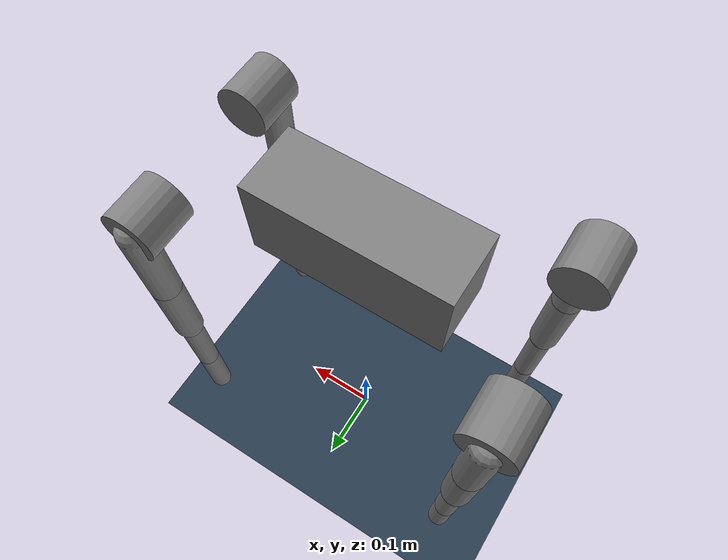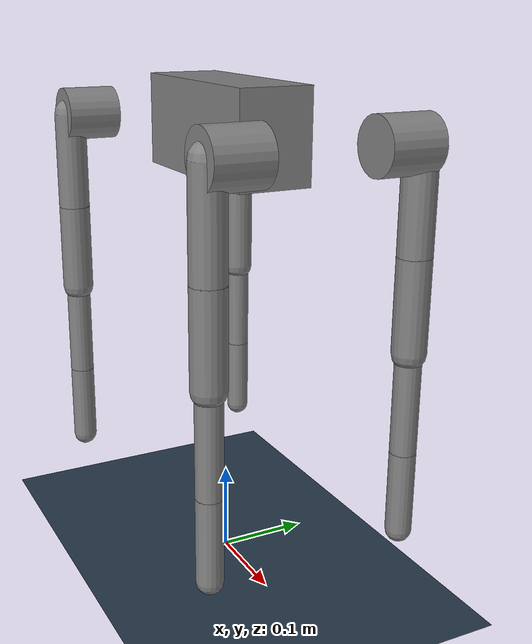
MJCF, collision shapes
<mujoco model="mini_cheetah">

    <compiler angle="radian"
              meshdir="../meshes/"
              autolimits="true"/>

    <option gravity="0 0 -9.81"
            timestep="0.001"
            iterations="80"
            solver="Newton"
            cone="elliptic"
            impratio="100"/>

    <default>
        <default class="mini">
            <joint damping="3"
                   armature="0.01"
                   frictionloss="0.1"/>

            <position kp="500"
                      forcerange="-40 40"/>

            <default class="visual">
                <geom type="mesh"
                      contype="0"
                      conaffinity="0"
                      group="2"
                      rgba="0.7 0.7 0.7 1"/>
            </default>

            <default class="collision">

                <geom type="capsule"
                      group="3"
                      contype="1"
                      conaffinity="1"
                      friction="0.8 0.02 0.01"
                      margin="0.002"/>

                <default class="hip_collision">
                    <geom type="cylinder"
                          size="0.03 0.03"
                          quat="1 1 0 0"/>
                </default>

                <default class="thigh1">
                    <geom size="0.018"
                          fromto="0 0 0 0 0 -0.11"/>
                </default>

                <default class="thigh2">
                    <geom size="0.018"
                          fromto="0 0 -0.11 0 0 -0.21"/>
                </default>

                <default class="calf1">
                    <geom size="0.014"
                          fromto="0 0 0 0 0 -0.11"/>
                </default>

                <default class="calf2">
                    <geom size="0.014"
                          fromto="0 0 -0.11 0 0 -0.20"/>
                </default>

                <default class="foot">
                    <geom type="sphere"
                          size="0.005"
                          pos="0 0 -0.20"
                          condim="6"
                          priority="1"
                          friction="1.0 0.02 0.01"
                          solimp="0.015 0.95 0.001"
                          solref="0.002 1"/>
                </default>

            </default>

            <default class="abduction">
                <joint axis="1 0 0"
                       damping="4"
                       range="-0.8 0.8"/>

                <position ctrlrange="-0.8 0.8"/>
            </default>

            <default class="hip">
                <joint axis="0 -1 0"
                       damping="4"
                       range="-1.2 4.2"/>

                <position ctrlrange="-1.2 4.2"/>
            </default>

            <default class="knee">
                <joint axis="0 -1 0"
                       damping="5"
                       armature="0.01"
                       range="-2.7 -0.8"/>

                <position ctrlrange="-2.7 -0.8"/>
            </default>

        </default>

    </default>

    <asset>

        <mesh name="mini_body" file="mini_body.stl"/>
        <mesh name="mini_abad" file="mini_abad.stl"/>
        <mesh name="mini_upper_link" file="mini_upper_link.stl"/>
        <mesh name="mini_lower_link" file="mini_lower_link.stl"/>

        <texture type="skybox"
                 builtin="gradient"
                 rgb1="0.3 0.5 0.7"
                 rgb2="0 0 0"
                 width="512"
                 height="512"/>

        <texture name="plane"
                 type="2d"
                 builtin="checker"
                 rgb1=".2 .3 .4"
                 rgb2=".1 .15 .2"
                 width="512"
                 height="512"/>

        <material name="plane"
                  texture="plane"
                  texrepeat="3 3"
                  reflectance="0"/>

    </asset>

    <worldbody>

        <light directional="true"
               diffuse=".8 .8 .8"
               pos="0 0 10"
               dir="0 0 -1"/>

        <geom name="floor"
              type="plane"
              size="0 0 1"
              material="plane"
              condim="3"
              friction="1.0 0.02 0.01"/>

        <body name="body" pos="0 0 0.5" childclass="mini">

            <freejoint/>

            <inertial mass="3.3"
                      pos="0 0 0"
                      diaginertia="0.042 0.036 0.011"/>

            <geom class="visual"
                  mesh="mini_body"/>

            <geom type="box"
                  size="0.11 0.04 0.05"
                  friction="0.8 0.02 0.01"/>

            <site name="imu" pos="0 0 0"/>

            <body name="abduct_fr" pos="0.19 -0.049 0">

                <joint class="abduction"
                       name="torso_to_abduct_fr_j"/>

                <geom class="visual"
                      mesh="mini_abad"
                      pos="-0.055 0 0"
                      quat="0 0.7071 0.7071 0"/>

                <geom class="hip_collision"
                      pos="0 -0.04 0"/>

                <body name="thigh_fr" pos="0 -0.062 0">

                    <joint class="hip"
                           name="abduct_fr_to_thigh_fr_j"/>

                    <geom class="visual"
                          mesh="mini_upper_link"
                          quat="0.7071 0 -0.7071 0"/>

                    <geom class="thigh1"/>
                    <geom class="thigh2"/>

                    <body name="shank_fr" pos="0 0 -0.209">

                        <joint class="knee"
                               name="thigh_fr_to_knee_fr_j"/>

                        <geom class="visual"
                              mesh="mini_lower_link"
                              quat="0 0 1 0"/>

                        <!-- collision -->
                        <geom class="calf1"/>
                        <geom class="calf2"/>
                        <geom class="foot"/>

                    </body>
                </body>
            </body>

            <body name="abduct_fl" pos="0.19 0.049 0">

                <joint class="abduction"
                       name="torso_to_abduct_fl_j"/>

                <geom class="visual"
                      mesh="mini_abad"
                      pos="-0.055 0 0"
                      quat="0.7071 0 0 -0.7071"/>

                <geom class="hip_collision"
                      pos="0 0.04 0"/>

                <body name="thigh_fl" pos="0 0.062 0">

                    <joint class="hip"
                           name="abduct_fl_to_thigh_fl_j"/>

                    <geom class="visual"
                          mesh="mini_upper_link"
                          quat="0.7071 0 -0.7071 0"/>

                    <geom class="thigh1"/>
                    <geom class="thigh2"/>

                    <body name="shank_fl" pos="0 0 -0.209">

                        <joint class="knee"
                               name="thigh_fl_to_knee_fl_j"/>

                        <geom class="visual"
                              mesh="mini_lower_link"
                              quat="0 0 1 0"/>

                        <geom class="calf1"/>
                        <geom class="calf2"/>
                        <geom class="foot"/>

                    </body>
                </body>
            </body>

            <body name="abduct_hr" pos="-0.19 -0.049 0">

                <joint class="abduction"
                       name="torso_to_abduct_hr_j"/>

                <geom class="visual"
                      mesh="mini_abad"
                      pos="0.055 0 0"
                      quat="0.7071 0 0 0.7071"/>

                <geom class="hip_collision"
                      pos="0 -0.04 0"/>

                <body name="thigh_hr" pos="0 -0.062 0">

                    <joint class="hip"
                           name="abduct_hr_to_thigh_hr_j"/>

                    <geom class="visual"
                          mesh="mini_upper_link"
                          quat="0.7071 0 -0.7071 0"/>

                    <geom class="thigh1"/>
                    <geom class="thigh2"/>

                    <body name="shank_hr" pos="0 0 -0.209">

                        <joint class="knee"
                               name="thigh_hr_to_knee_hr_j"/>

                        <geom class="visual"
                              mesh="mini_lower_link"
                              quat="0 0 1 0"/>

                        <geom class="calf1"/>
                        <geom class="calf2"/>
                        <geom class="foot"/>

                    </body>
                </body>
            </body>

            <body name="abduct_hl" pos="-0.19 0.049 0">

                <joint class="abduction"
                       name="torso_to_abduct_hl_j"/>

                <geom class="visual"
                      mesh="mini_abad"
                      pos="0.055 0 0"
                      quat="0 0.7071 -0.7071 0"/>

                <geom class="hip_collision"
                      pos="0 0.04 0"/>

                <body name="thigh_hl" pos="0 0.062 0">

                    <joint class="hip"
                           name="abduct_hl_to_thigh_hl_j"/>

                    <geom class="visual"
                          mesh="mini_upper_link"
                          quat="0.7071 0 -0.7071 0"/>

                    <geom class="thigh1"/>
                    <geom class="thigh2"/>

                    <body name="shank_hl" pos="0 0 -0.209">

                        <joint class="knee"
                               name="thigh_hl_to_knee_hl_j"/>

                        <geom class="visual"
                              mesh="mini_lower_link"
                              quat="0 0 1 0"/>

                        <geom class="calf1"/>
                        <geom class="calf2"/>
                        <geom class="foot"/>

                    </body>
                </body>
            </body>

        </body>

    </worldbody>

    <actuator>

        <position class="abduction" joint="torso_to_abduct_fl_j"/>
        <position class="hip"       joint="abduct_fl_to_thigh_fl_j"/>
        <position class="knee"      joint="thigh_fl_to_knee_fl_j"/>

        <position class="abduction" joint="torso_to_abduct_fr_j"/>
        <position class="hip"       joint="abduct_fr_to_thigh_fr_j"/>
        <position class="knee"      joint="thigh_fr_to_knee_fr_j"/>

        <position class="abduction" joint="torso_to_abduct_hl_j"/>
        <position class="hip"       joint="abduct_hl_to_thigh_hl_j"/>
        <position class="knee"      joint="thigh_hl_to_knee_hl_j"/>

        <position class="abduction" joint="torso_to_abduct_hr_j"/>
        <position class="hip"       joint="abduct_hr_to_thigh_hr_j"/>
        <position class="knee"      joint="thigh_hr_to_knee_hr_j"/>

    </actuator>

    <sensor>
        <framexaxis objtype="site" objname="imu"/>
        <framepos name="body_pos" objtype="site" objname="imu"/>
        <framezaxis objtype="site" objname="imu"/>
    </sensor>

    <contact>
        <exclude name="exclude_body_to_abad_fr" body1="body" body2="thigh_fr"/>
        <exclude name="exclude_body_to_abad_fl" body1="body" body2="thigh_fl"/>
        <exclude name="exclude_body_to_abad_hr" body1="body" body2="thigh_hr"/>
        <exclude name="exclude_body_to_abad_hl" body1="body" body2="thigh_hl"/>

        <exclude name="exclude_body_to_shank_fr" body1="body" body2="shank_fr"/>
        <exclude name="exclude_body_to_shank_fl" body1="body" body2="shank_fl"/>
        <exclude name="exclude_body_to_shank_hr" body1="body" body2="shank_hr"/>
        <exclude name="exclude_body_to_shank_hl" body1="body" body2="shank_hl"/>
    </contact>
</mujoco>
